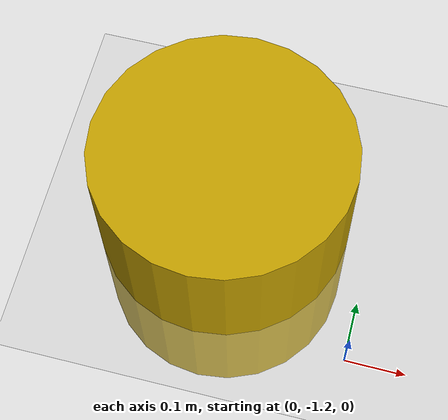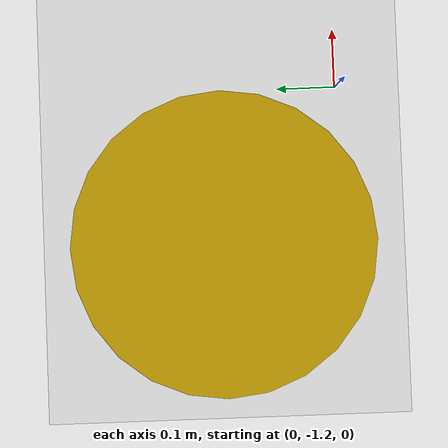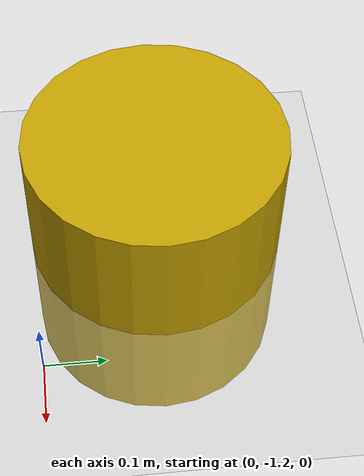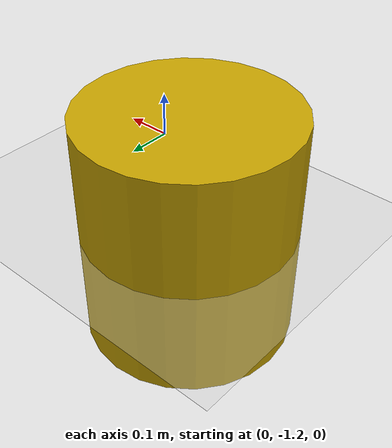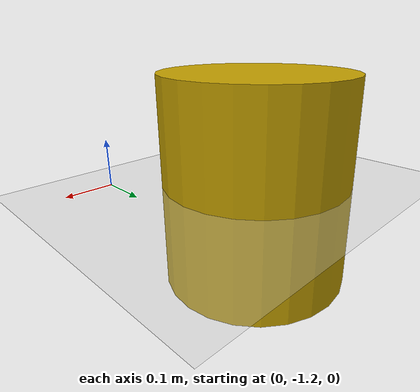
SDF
<sdf version="1.6">
 <world name="default">
  <light name="sun" type="directional">
   <pose>0 0 10 0 -0 0</pose>
   <diffuse>0.8 0.8 0.8 1</diffuse>
   <specular>0.1 0.1 0.1 1</specular>
   <attenuation>
    <range>1000</range>
    <constant>0.9</constant>
    <linear>0.01</linear>
    <quadratic>0.001</quadratic>
   </attenuation>
   <direction>-0.5 0.5 -1</direction>
  </light>
  <model name="ground_plane">
   <static>1</static>
   <link name="link">
    <collision name="collision">
     <geometry><plane><normal>0 0 1</normal><size>100 100</size></plane></geometry>
     <surface><friction><ode><mu>100</mu><mu2>50</mu2></ode></friction></surface>
    </collision>
    <visual name="visual">
     <cast_shadows>0</cast_shadows>
     <geometry><plane><normal>0 0 1</normal><size>100 100</size></plane></geometry>
     <material>
      <script><uri>file://media/materials/scripts/gazebo.material</uri><name>Gazebo/Grey</name></script>
     </material>
    </visual>
   </link>
  </model>
  <include><uri>model://unit_cylinder_0</uri><pose>-0.25 -1 0 0 0 0</pose></include>
  <physics name="default_physics" default="0" type="ode">
   <real_time_update_rate>100</real_time_update_rate>
   <max_step_size>0.01</max_step_size>
   <real_time_factor>0.5</real_time_factor>
   <ode>
    <solver>
     <type>quick</type>
     <iters>150</iters>
     <precon_iters>0</precon_iters>
     <sor>1.4</sor>
     <use_dynamic_moi_rescaling>1</use_dynamic_moi_rescaling>
    </solver>
    <constraints>
     <cfm>1e-05</cfm>
     <erp>0.2</erp>
     <contact_max_correcting_vel>2000</contact_max_correcting_vel>
     <contact_surface_layer>0.01</contact_surface_layer>
    </constraints>
   </ode>
  </physics>
  <scene><ambient>0.4 0.4 0.4 1</ambient><background>0.7 0.7 0.7 1</background><shadows>0</shadows></scene>
  <gravity>0 0 -9.8</gravity>
  <magnetic_field>6e-06 2.3e-05 -4.2e-05</magnetic_field>
  <atmosphere type="adiabatic"/>
  <spherical_coordinates>
   <surface_model>EARTH_WGS84</surface_model>
   <latitude_deg>0</latitude_deg>
   <longitude_deg>0</longitude_deg>
   <elevation>0</elevation>
   <heading_deg>0</heading_deg>
  </spherical_coordinates>
 </world>
</sdf>

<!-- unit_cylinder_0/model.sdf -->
<sdf version='1.7'>
  <model name='unit_cylinder_0'>
    <link name='link'>
      <inertial>
        <mass>1</mass>
        <inertia>
          <ixx>0.145833</ixx>
          <ixy>0</ixy>
          <ixz>0</ixz>
          <iyy>0.145833</iyy>
          <iyz>0</iyz>
          <izz>0.125</izz>
        </inertia>
        <pose>0 0 0 0 -0 0</pose>
      </inertial>
      <self_collide>0</self_collide>
      <enable_wind>0</enable_wind>
      <kinematic>0</kinematic>
      <pose>0 0 0 0 -0 0</pose>
      <gravity>1</gravity>
      <visual name='visual'>
        <geometry>
          <cylinder>
            <radius>0.211347</radius>
            <length>0.472142</length>
          </cylinder>
        </geometry>
        <material>
          <script>
            <name>Gazebo/Grey</name>
            <uri>file://media/materials/scripts/gazebo.material</uri>
          </script>
          <shader type='pixel'>
            <normal_map>__default__</normal_map>
          </shader>
          <ambient>0.769 0.627 0 1</ambient>
          <diffuse>0.769 0.627 0 1</diffuse>
          <specular>0.769 0.627 0 1</specular>
          <emissive>0.769 0.627 0 1</emissive>
        </material>
        <pose>0 0 0 0 -0 0</pose>
        <transparency>0</transparency>
        <cast_shadows>1</cast_shadows>
      </visual>
      <collision name='collision'>
        <laser_retro>0</laser_retro>
        <max_contacts>10</max_contacts>
        <pose>0 0 0 0 -0 0</pose>
        <geometry>
          <cylinder>
            <radius>0.211347</radius>
            <length>0.472142</length>
          </cylinder>
        </geometry>
        <surface>
          <friction>
            <ode>
              <mu>1</mu>
              <mu2>1</mu2>
              <fdir1>0 0 0</fdir1>
              <slip1>0</slip1>
              <slip2>0</slip2>
            </ode>
            <torsional>
              <coefficient>1</coefficient>
              <patch_radius>0</patch_radius>
              <surface_radius>0</surface_radius>
              <use_patch_radius>1</use_patch_radius>
              <ode>
                <slip>0</slip>
              </ode>
            </torsional>
          </friction>
          <bounce>
            <restitution_coefficient>0</restitution_coefficient>
            <threshold>1e+06</threshold>
          </bounce>
          <contact>
            <collide_without_contact>0</collide_without_contact>
            <collide_without_contact_bitmask>1</collide_without_contact_bitmask>
            <collide_bitmask>1</collide_bitmask>
            <ode>
              <soft_cfm>0</soft_cfm>
              <soft_erp>0.2</soft_erp>
              <kp>1e+13</kp>
              <kd>1</kd>
              <max_vel>0.01</max_vel>
              <min_depth>0</min_depth>
            </ode>
            <bullet>
              <split_impulse>1</split_impulse>
              <split_impulse_penetration_threshold>-0.01</split_impulse_penetration_threshold>
              <soft_cfm>0</soft_cfm>
              <soft_erp>0.2</soft_erp>
              <kp>1e+13</kp>
              <kd>1</kd>
            </bullet>
          </contact>
        </surface>
      </collision>
    </link>
    <static>0</static>
    <allow_auto_disable>1</allow_auto_disable>
  </model>
</sdf>
